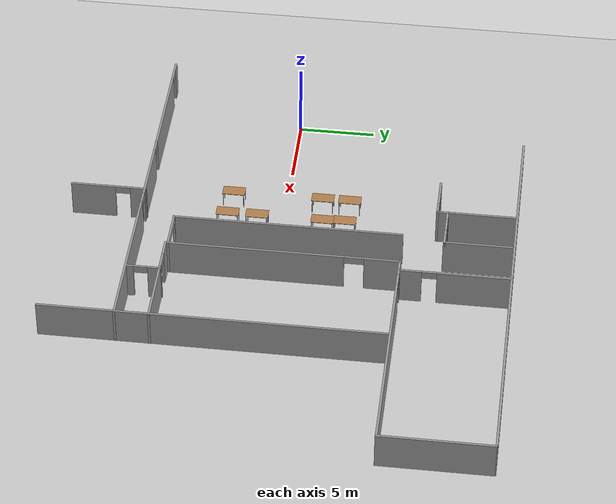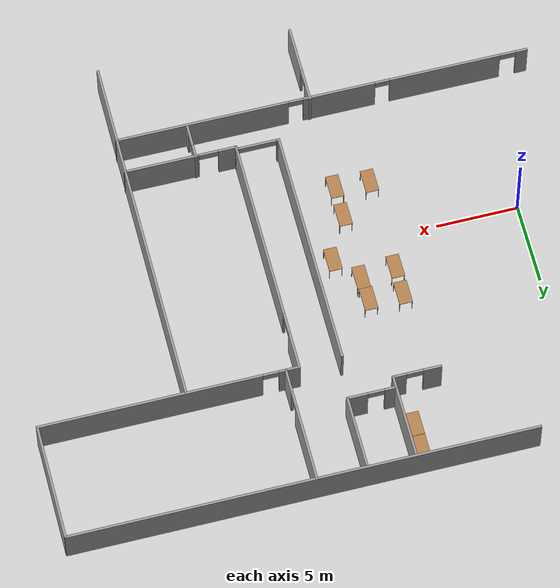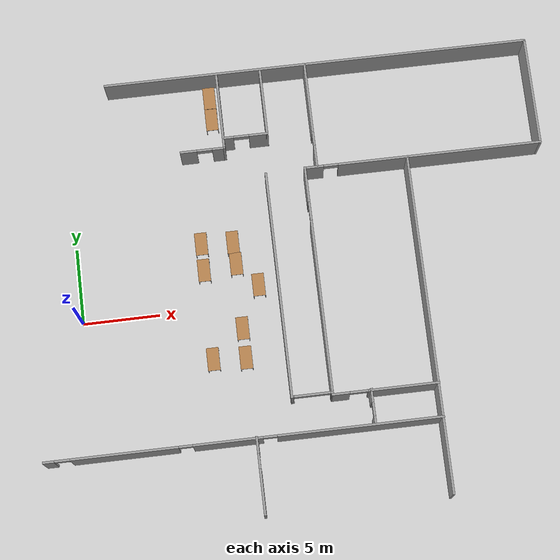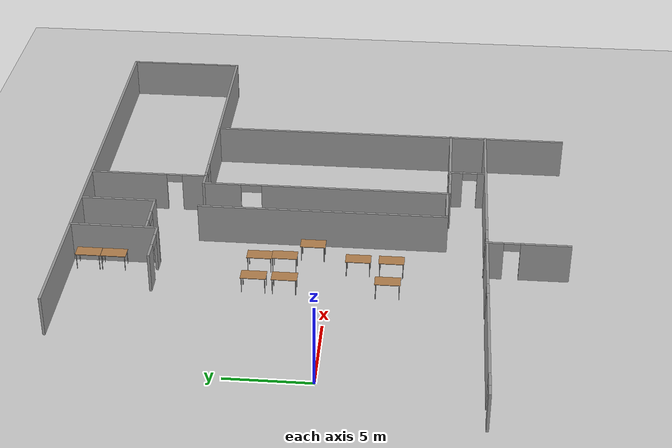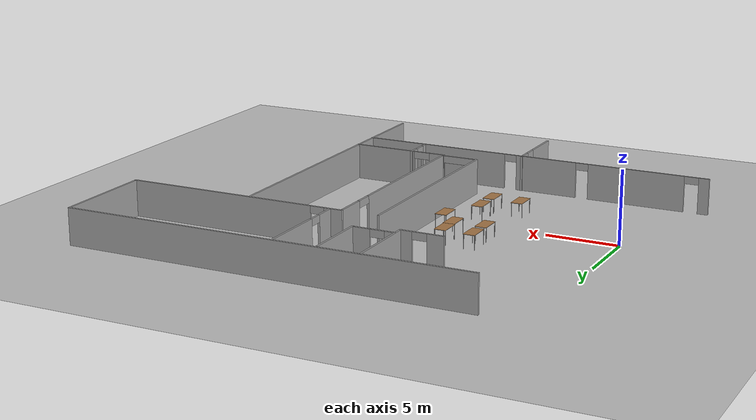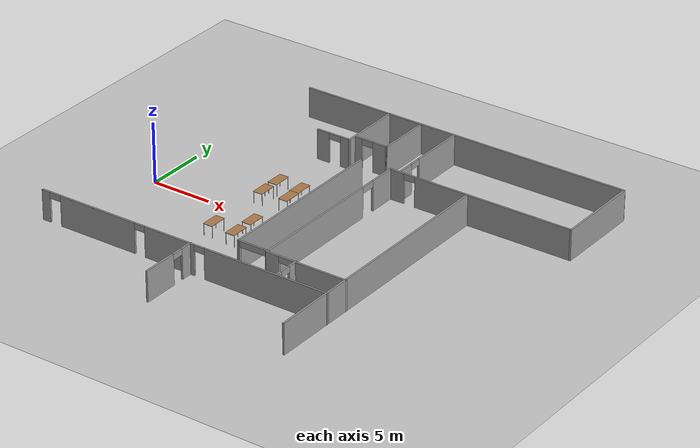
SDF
<sdf version="1.4">
 <world name="default">
  <model name="ground_plane">
   <static>1</static>
   <link name="link">
    <collision name="collision">
     <geometry><plane><normal>0 0 1</normal><size>100 100</size></plane></geometry>
    </collision>
    <visual name="visual">
     <cast_shadows>0</cast_shadows>
     <geometry><plane><normal>0 0 1</normal><size>100 100</size></plane></geometry>
     <material>
      <script><uri>file://media/materials/scripts/gazebo.material</uri><name>Gazebo/Grey</name></script>
     </material>
    </visual>
    <velocity_decay><linear>0</linear><angular>0</angular></velocity_decay>
   </link>
  </model>
  <model name="Shannon">
   <pose>-0.0406 0.68299 0 0 -0 0</pose>
   <link name="Wall_10">
    <collision name="Wall_10_Collision">
     <geometry><box><size>22.25 0.15 2.5</size></box></geometry>
     <pose>0 0 1.25 0 -0 0</pose>
    </collision>
    <visual name="Wall_10_Visual">
     <pose>0 0 1.25 0 -0 0</pose>
     <geometry><box><size>22.25 0.15 2.5</size></box></geometry>
     <material>
      <script><uri>file://media/materials/scripts/gazebo.material</uri><name>Gazebo/Grey</name></script>
      <ambient>1 1 1 1</ambient>
     </material>
    </visual>
    <pose>22.3654 -3.62363 0 0 -0 -1.5708</pose>
    <velocity_decay><linear>0</linear><angular>0</angular></velocity_decay>
   </link>
   <link name="Wall_101">
    <pose>10.5074 -12.1568 0 0 -0 -1.5708</pose>
    <visual name="Wall_101_Visual_0">
     <pose>-1.95368 0 1.25 0 -0 0</pose>
     <geometry><box><size>1.09264 0.15 2.5</size></box></geometry>
     <material>
      <script><uri>file://media/materials/scripts/gazebo.material</uri><name>Gazebo/Grey</name></script>
      <ambient>1 1 1 1</ambient>
     </material>
    </visual>
    <collision name="Wall_101_Collision_0">
     <geometry><box><size>1.09264 0.15 2.5</size></box></geometry>
     <pose>-1.95368 0 1.25 0 -0 0</pose>
    </collision>
    <visual name="Wall_101_Visual_1">
     <pose>1.02674 0 1.25 0 -0 0</pose>
     <geometry><box><size>2.94652 0.15 2.5</size></box></geometry>
     <material>
      <script><uri>file://media/materials/scripts/gazebo.material</uri><name>Gazebo/Grey</name></script>
      <ambient>1 1 1 1</ambient>
     </material>
    </visual>
    <collision name="Wall_101_Collision_1">
     <geometry><box><size>2.94652 0.15 2.5</size></box></geometry>
     <pose>1.02674 0 1.25 0 -0 0</pose>
    </collision>
    <visual name="Wall_101_Visual_2">
     <pose>-0.926938 0 2.25 0 -0 0</pose>
     <geometry><box><size>0.960835 0.15 0.5</size></box></geometry>
     <material>
      <script><uri>file://media/materials/scripts/gazebo.material</uri><name>Gazebo/Grey</name></script>
      <ambient>1 1 1 1</ambient>
     </material>
    </visual>
    <collision name="Wall_101_Collision_2">
     <geometry><box><size>0.960835 0.15 0.5</size></box></geometry>
     <pose>-0.926938 0 2.25 0 -0 0</pose>
    </collision>
    <velocity_decay><linear>0</linear><angular>0</angular></velocity_decay>
   </link>
   <link name="Wall_111">
    <pose>14.3103 -7.43874 0 0 -0 0</pose>
    <visual name="Wall_111_Visual_0">
     <pose>-1.26476 0 1.25 0 -0 0</pose>
     <geometry><box><size>0.220488 0.15 2.5</size></box></geometry>
     <material>
      <script><uri>file://media/materials/scripts/gazebo.material</uri><name>Gazebo/Grey</name></script>
      <ambient>1 1 1 1</ambient>
     </material>
    </visual>
    <collision name="Wall_111_Collision_0">
     <geometry><box><size>0.220488 0.15 2.5</size></box></geometry>
     <pose>-1.26476 0 1.25 0 -0 0</pose>
    </collision>
    <visual name="Wall_111_Visual_1">
     <pose>1.27845 0 1.25 0 -0 0</pose>
     <geometry><box><size>0.193101 0.15 2.5</size></box></geometry>
     <material>
      <script><uri>file://media/materials/scripts/gazebo.material</uri><name>Gazebo/Grey</name></script>
      <ambient>1 1 1 1</ambient>
     </material>
    </visual>
    <collision name="Wall_111_Collision_1">
     <geometry><box><size>0.193101 0.15 2.5</size></box></geometry>
     <pose>1.27845 0 1.25 0 -0 0</pose>
    </collision>
    <visual name="Wall_111_Visual_2">
     <pose>0.013694 0 2.25 0 -0 0</pose>
     <geometry><box><size>2.33641 0.15 0.5</size></box></geometry>
     <material>
      <script><uri>file://media/materials/scripts/gazebo.material</uri><name>Gazebo/Grey</name></script>
      <ambient>1 1 1 1</ambient>
     </material>
    </visual>
    <collision name="Wall_111_Collision_2">
     <geometry><box><size>2.33641 0.15 0.5</size></box></geometry>
     <pose>0.013694 0 2.25 0 -0 0</pose>
    </collision>
    <velocity_decay><linear>0</linear><angular>0</angular></velocity_decay>
   </link>
   <link name="Wall_120">
    <collision name="Wall_120_Collision">
     <geometry><box><size>28.25 0.15 2.5</size></box></geometry>
     <pose>0 0 1.25 0 -0 0</pose>
    </collision>
    <visual name="Wall_120_Visual">
     <pose>0 0 1.25 0 -0 0</pose>
     <geometry><box><size>28.25 0.15 2.5</size></box></geometry>
     <material>
      <script><uri>file://media/materials/scripts/gazebo.material</uri><name>Gazebo/Grey</name></script>
      <ambient>1 1 1 1</ambient>
     </material>
    </visual>
    <pose>17.1298 14.6743 0 0 -0 0</pose>
    <velocity_decay><linear>0</linear><angular>0</angular></velocity_decay>
   </link>
   <link name="Wall_3">
    <collision name="Wall_3_Collision">
     <geometry><box><size>7.25 0.15 2.5</size></box></geometry>
     <pose>0 0 1.25 0 -0 0</pose>
    </collision>
    <visual name="Wall_3_Visual">
     <pose>0 0 1.25 0 -0 0</pose>
     <geometry><box><size>7.25 0.15 2.5</size></box></geometry>
     <material>
      <script><uri>file://media/materials/scripts/gazebo.material</uri><name>Gazebo/Grey</name></script>
      <ambient>1 1 1 1</ambient>
     </material>
    </visual>
    <pose>31.1997 11.0602 0 0 -0 -1.57077</pose>
    <velocity_decay><linear>0</linear><angular>0</angular></velocity_decay>
   </link>
   <link name="Wall_30">
    <pose>9.71772 -9.78221 0 0 -0 0</pose>
    <visual name="Wall_30_Visual_0">
     <pose>-12.3837 0 1.25 0 -0 0</pose>
     <geometry><box><size>0.732546 0.15 2.5</size></box></geometry>
     <material>
      <script><uri>file://media/materials/scripts/gazebo.material</uri><name>Gazebo/Grey</name></script>
      <ambient>1 1 1 1</ambient>
     </material>
    </visual>
    <collision name="Wall_30_Collision_0">
     <geometry><box><size>0.732546 0.15 2.5</size></box></geometry>
     <pose>-12.3837 0 1.25 0 -0 0</pose>
    </collision>
    <visual name="Wall_30_Visual_1">
     <pose>-7.59417 0 1.25 0 -0 0</pose>
     <geometry><box><size>6.86407 0.15 2.5</size></box></geometry>
     <material>
      <script><uri>file://media/materials/scripts/gazebo.material</uri><name>Gazebo/Grey</name></script>
      <ambient>1 1 1 1</ambient>
     </material>
    </visual>
    <collision name="Wall_30_Collision_1">
     <geometry><box><size>6.86407 0.15 2.5</size></box></geometry>
     <pose>-7.59417 0 1.25 0 -0 0</pose>
    </collision>
    <visual name="Wall_30_Visual_2">
     <pose>-1.03326 0 1.25 0 -0 0</pose>
     <geometry><box><size>4.45774 0.15 2.5</size></box></geometry>
     <material>
      <script><uri>file://media/materials/scripts/gazebo.material</uri><name>Gazebo/Grey</name></script>
      <ambient>1 1 1 1</ambient>
     </material>
    </visual>
    <collision name="Wall_30_Collision_2">
     <geometry><box><size>4.45774 0.15 2.5</size></box></geometry>
     <pose>-1.03326 0 1.25 0 -0 0</pose>
    </collision>
    <visual name="Wall_30_Visual_3">
     <pose>7.42281 0 1.25 0 -0 0</pose>
     <geometry><box><size>10.6544 0.15 2.5</size></box></geometry>
     <material>
      <script><uri>file://media/materials/scripts/gazebo.material</uri><name>Gazebo/Grey</name></script>
      <ambient>1 1 1 1</ambient>
     </material>
    </visual>
    <collision name="Wall_30_Collision_3">
     <geometry><box><size>10.6544 0.15 2.5</size></box></geometry>
     <pose>7.42281 0 1.25 0 -0 0</pose>
    </collision>
    <visual name="Wall_30_Visual_4">
     <pose>-11.5218 0 2.25 0 -0 0</pose>
     <geometry><box><size>0.991253 0.15 0.5</size></box></geometry>
     <material>
      <script><uri>file://media/materials/scripts/gazebo.material</uri><name>Gazebo/Grey</name></script>
      <ambient>1 1 1 1</ambient>
     </material>
    </visual>
    <collision name="Wall_30_Collision_4">
     <geometry><box><size>0.991253 0.15 0.5</size></box></geometry>
     <pose>-11.5218 0 2.25 0 -0 0</pose>
    </collision>
    <visual name="Wall_30_Visual_5">
     <pose>-3.71213 0 2.25 0 -0 0</pose>
     <geometry><box><size>0.9 0.15 0.5</size></box></geometry>
     <material>
      <script><uri>file://media/materials/scripts/gazebo.material</uri><name>Gazebo/Grey</name></script>
      <ambient>1 1 1 1</ambient>
     </material>
    </visual>
    <collision name="Wall_30_Collision_5">
     <geometry><box><size>0.9 0.15 0.5</size></box></geometry>
     <pose>-3.71213 0 2.25 0 -0 0</pose>
    </collision>
    <visual name="Wall_30_Visual_6">
     <pose>1.64561 0 2.25 0 -0 0</pose>
     <geometry><box><size>0.9 0.15 0.5</size></box></geometry>
     <material>
      <script><uri>file://media/materials/scripts/gazebo.material</uri><name>Gazebo/Grey</name></script>
      <ambient>1 1 1 1</ambient>
     </material>
    </visual>
    <collision name="Wall_30_Collision_6">
     <geometry><box><size>0.9 0.15 0.5</size></box></geometry>
     <pose>1.64561 0 2.25 0 -0 0</pose>
    </collision>
    <velocity_decay><linear>0</linear><angular>0</angular></velocity_decay>
   </link>
   <link name="Wall_35">
    <collision name="Wall_35_Collision">
     <geometry><box><size>15 0.15 2.5</size></box></geometry>
     <pose>0 0 1.25 0 -0 0</pose>
    </collision>
    <visual name="Wall_35_Visual">
     <pose>0 0 1.25 0 -0 0</pose>
     <geometry><box><size>15 0.15 2.5</size></box></geometry>
     <material>
      <script><uri>file://media/materials/scripts/gazebo.material</uri><name>Gazebo/Grey</name></script>
      <ambient>1 1 1 1</ambient>
     </material>
    </visual>
    <pose>13.0103 -0.013741 0 0 -0 -1.5708</pose>
    <velocity_decay><linear>0</linear><angular>0</angular></velocity_decay>
   </link>
   <link name="Wall_4">
    <pose>23.3998 7.51045 0 0 -0 3.14159</pose>
    <visual name="Wall_4_Visual_0">
     <pose>-1.13283 0 1.25 0 -0 0</pose>
     <geometry><box><size>13.4843 0.15 2.5</size></box></geometry>
     <material>
      <script><uri>file://media/materials/scripts/gazebo.material</uri><name>Gazebo/Grey</name></script>
      <ambient>1 1 1 1</ambient>
     </material>
    </visual>
    <collision name="Wall_4_Collision_0">
     <geometry><box><size>13.4843 0.15 2.5</size></box></geometry>
     <pose>-1.13283 0 1.25 0 -0 0</pose>
    </collision>
    <visual name="Wall_4_Visual_1">
     <pose>7.22409 0 1.25 0 -0 0</pose>
     <geometry><box><size>1.30183 0.15 2.5</size></box></geometry>
     <material>
      <script><uri>file://media/materials/scripts/gazebo.material</uri><name>Gazebo/Grey</name></script>
      <ambient>1 1 1 1</ambient>
     </material>
    </visual>
    <collision name="Wall_4_Collision_1">
     <geometry><box><size>1.30183 0.15 2.5</size></box></geometry>
     <pose>7.22409 0 1.25 0 -0 0</pose>
    </collision>
    <visual name="Wall_4_Visual_2">
     <pose>6.09125 0 2.25 0 -0 0</pose>
     <geometry><box><size>0.96384 0.15 0.5</size></box></geometry>
     <material>
      <script><uri>file://media/materials/scripts/gazebo.material</uri><name>Gazebo/Grey</name></script>
      <ambient>1 1 1 1</ambient>
     </material>
    </visual>
    <collision name="Wall_4_Collision_2">
     <geometry><box><size>0.96384 0.15 0.5</size></box></geometry>
     <pose>6.09125 0 2.25 0 -0 0</pose>
    </collision>
    <velocity_decay><linear>0</linear><angular>0</angular></velocity_decay>
   </link>
   <link name="Wall_7">
    <pose>15.5998 -0.039555 0 0 -0 -1.5708</pose>
    <visual name="Wall_7_Visual_0">
     <pose>-6.43181 0 1.25 0 -0 0</pose>
     <geometry><box><size>2.38638 0.15 2.5</size></box></geometry>
     <material>
      <script><uri>file://media/materials/scripts/gazebo.material</uri><name>Gazebo/Grey</name></script>
      <ambient>1 1 1 1</ambient>
     </material>
    </visual>
    <collision name="Wall_7_Collision_0">
     <geometry><box><size>2.38638 0.15 2.5</size></box></geometry>
     <pose>-6.43181 0 1.25 0 -0 0</pose>
    </collision>
    <visual name="Wall_7_Visual_1">
     <pose>1.82819 0 1.25 0 -0 0</pose>
     <geometry><box><size>11.5936 0.15 2.5</size></box></geometry>
     <material>
      <script><uri>file://media/materials/scripts/gazebo.material</uri><name>Gazebo/Grey</name></script>
      <ambient>1 1 1 1</ambient>
     </material>
    </visual>
    <collision name="Wall_7_Collision_1">
     <geometry><box><size>11.5936 0.15 2.5</size></box></geometry>
     <pose>1.82819 0 1.25 0 -0 0</pose>
    </collision>
    <visual name="Wall_7_Visual_2">
     <pose>-4.60362 0 2.25 0 -0 0</pose>
     <geometry><box><size>1.27 0.15 0.5</size></box></geometry>
     <material>
      <script><uri>file://media/materials/scripts/gazebo.material</uri><name>Gazebo/Grey</name></script>
      <ambient>1 1 1 1</ambient>
     </material>
    </visual>
    <collision name="Wall_7_Collision_2">
     <geometry><box><size>1.27 0.15 0.5</size></box></geometry>
     <pose>-4.60362 0 2.25 0 -0 0</pose>
    </collision>
    <velocity_decay><linear>0</linear><angular>0</angular></velocity_decay>
   </link>
   <link name="Wall_8">
    <pose>18.9967 -7.59133 0 0 -0 -0.000523</pose>
    <visual name="Wall_8_Visual_0">
     <pose>-2.88515 0 1.25 0 -0 0</pose>
     <geometry><box><size>1.17355 0.15 2.5</size></box></geometry>
     <material>
      <script><uri>file://media/materials/scripts/gazebo.material</uri><name>Gazebo/Grey</name></script>
      <ambient>1 1 1 1</ambient>
     </material>
    </visual>
    <collision name="Wall_8_Collision_0">
     <geometry><box><size>1.17355 0.15 2.5</size></box></geometry>
     <pose>-2.88515 0 1.25 0 -0 0</pose>
    </collision>
    <visual name="Wall_8_Visual_1">
     <pose>1.17679 0 1.25 0 -0 0</pose>
     <geometry><box><size>4.59027 0.15 2.5</size></box></geometry>
     <material>
      <script><uri>file://media/materials/scripts/gazebo.material</uri><name>Gazebo/Grey</name></script>
      <ambient>1 1 1 1</ambient>
     </material>
    </visual>
    <collision name="Wall_8_Collision_1">
     <geometry><box><size>4.59027 0.15 2.5</size></box></geometry>
     <pose>1.17679 0 1.25 0 -0 0</pose>
    </collision>
    <visual name="Wall_8_Visual_2">
     <pose>-1.70836 0 2.25 0 -0 0</pose>
     <geometry><box><size>1.18004 0.15 0.5</size></box></geometry>
     <material>
      <script><uri>file://media/materials/scripts/gazebo.material</uri><name>Gazebo/Grey</name></script>
      <ambient>1 1 1 1</ambient>
     </material>
    </visual>
    <collision name="Wall_8_Collision_2">
     <geometry><box><size>1.18004 0.15 0.5</size></box></geometry>
     <pose>-1.70836 0 2.25 0 -0 0</pose>
    </collision>
    <velocity_decay><linear>0</linear><angular>0</angular></velocity_decay>
   </link>
   <link name="Wall_88">
    <pose>9.05855 9.49441 0 0 -0 0</pose>
    <visual name="Wall_88_Visual_0">
     <pose>-0.945109 0 1.25 0 -0 0</pose>
     <geometry><box><size>1.10978 0.15 2.5</size></box></geometry>
     <material>
      <script><uri>file://media/materials/scripts/gazebo.material</uri><name>Gazebo/Grey</name></script>
      <ambient>1 1 1 1</ambient>
     </material>
    </visual>
    <collision name="Wall_88_Collision_0">
     <geometry><box><size>1.10978 0.15 2.5</size></box></geometry>
     <pose>-0.945109 0 1.25 0 -0 0</pose>
    </collision>
    <visual name="Wall_88_Visual_1">
     <pose>1.06489 0 1.25 0 -0 0</pose>
     <geometry><box><size>0.870219 0.15 2.5</size></box></geometry>
     <material>
      <script><uri>file://media/materials/scripts/gazebo.material</uri><name>Gazebo/Grey</name></script>
      <ambient>1 1 1 1</ambient>
     </material>
    </visual>
    <collision name="Wall_88_Collision_1">
     <geometry><box><size>0.870219 0.15 2.5</size></box></geometry>
     <pose>1.06489 0 1.25 0 -0 0</pose>
    </collision>
    <visual name="Wall_88_Visual_2">
     <pose>0.119781 0 2.25 0 -0 0</pose>
     <geometry><box><size>1.02 0.15 0.5</size></box></geometry>
     <material>
      <script><uri>file://media/materials/scripts/gazebo.material</uri><name>Gazebo/Grey</name></script>
      <ambient>1 1 1 1</ambient>
     </material>
    </visual>
    <collision name="Wall_88_Collision_2">
     <geometry><box><size>1.02 0.15 0.5</size></box></geometry>
     <pose>0.119781 0 2.25 0 -0 0</pose>
    </collision>
    <velocity_decay><linear>0</linear><angular>0</angular></velocity_decay>
   </link>
   <link name="Wall_89">
    <collision name="Wall_89_Collision">
     <geometry><box><size>5.25 0.15 2.5</size></box></geometry>
     <pose>0 0 1.25 0 -0 0</pose>
    </collision>
    <visual name="Wall_89_Visual">
     <pose>0 0 1.25 0 -0 0</pose>
     <geometry><box><size>5.25 0.15 2.5</size></box></geometry>
     <material>
      <script><uri>file://media/materials/scripts/gazebo.material</uri><name>Gazebo/Grey</name></script>
      <ambient>1 1 1 1</ambient>
     </material>
    </visual>
    <pose>10.4835 12.0444 0 0 -0 1.5708</pose>
    <velocity_decay><linear>0</linear><angular>0</angular></velocity_decay>
   </link>
   <link name="Wall_91">
    <pose>11.976 10.1638 0 0 -0 0</pose>
    <visual name="Wall_91_Visual_0">
     <pose>-1.14883 0 1.25 0 -0 0</pose>
     <geometry><box><size>0.702335 0.15 2.5</size></box></geometry>
     <material>
      <script><uri>file://media/materials/scripts/gazebo.material</uri><name>Gazebo/Grey</name></script>
      <ambient>1 1 1 1</ambient>
     </material>
    </visual>
    <collision name="Wall_91_Collision_0">
     <geometry><box><size>0.702335 0.15 2.5</size></box></geometry>
     <pose>-1.14883 0 1.25 0 -0 0</pose>
    </collision>
    <visual name="Wall_91_Visual_1">
     <pose>0.856167 0 1.25 0 -0 0</pose>
     <geometry><box><size>1.28767 0.15 2.5</size></box></geometry>
     <material>
      <script><uri>file://media/materials/scripts/gazebo.material</uri><name>Gazebo/Grey</name></script>
      <ambient>1 1 1 1</ambient>
     </material>
    </visual>
    <collision name="Wall_91_Collision_1">
     <geometry><box><size>1.28767 0.15 2.5</size></box></geometry>
     <pose>0.856167 0 1.25 0 -0 0</pose>
    </collision>
    <visual name="Wall_91_Visual_2">
     <pose>-0.292665 0 2.25 0 -0 0</pose>
     <geometry><box><size>1.01 0.15 0.5</size></box></geometry>
     <material>
      <script><uri>file://media/materials/scripts/gazebo.material</uri><name>Gazebo/Grey</name></script>
      <ambient>1 1 1 1</ambient>
     </material>
    </visual>
    <collision name="Wall_91_Collision_2">
     <geometry><box><size>1.01 0.15 0.5</size></box></geometry>
     <pose>-0.292665 0 2.25 0 -0 0</pose>
    </collision>
    <velocity_decay><linear>0</linear><angular>0</angular></velocity_decay>
   </link>
   <link name="Wall_92">
    <collision name="Wall_92_Collision">
     <geometry><box><size>4.5 0.15 2.5</size></box></geometry>
     <pose>0 0 1.25 0 -0 0</pose>
    </collision>
    <visual name="Wall_92_Visual">
     <pose>0 0 1.25 0 -0 0</pose>
     <geometry><box><size>4.5 0.15 2.5</size></box></geometry>
     <material>
      <script><uri>file://media/materials/scripts/gazebo.material</uri><name>Gazebo/Grey</name></script>
      <ambient>1 1 1 1</ambient>
     </material>
    </visual>
    <pose>13.401 12.3388 0 0 -0 1.5708</pose>
    <velocity_decay><linear>0</linear><angular>0</angular></velocity_decay>
   </link>
   <link name="Wall_94">
    <pose>16.403 11.1232 0 0 -0 1.5708</pose>
    <visual name="Wall_94_Visual_0">
     <pose>-2.88705 0 1.25 0 -0 0</pose>
     <geometry><box><size>1.47589 0.15 2.5</size></box></geometry>
     <material>
      <script><uri>file://media/materials/scripts/gazebo.material</uri><name>Gazebo/Grey</name></script>
      <ambient>1 1 1 1</ambient>
     </material>
    </visual>
    <collision name="Wall_94_Collision_0">
     <geometry><box><size>1.47589 0.15 2.5</size></box></geometry>
     <pose>-2.88705 0 1.25 0 -0 0</pose>
    </collision>
    <visual name="Wall_94_Visual_1">
     <pose>1.21795 0 1.25 0 -0 0</pose>
     <geometry><box><size>4.81411 0.15 2.5</size></box></geometry>
     <material>
      <script><uri>file://media/materials/scripts/gazebo.material</uri><name>Gazebo/Grey</name></script>
      <ambient>1 1 1 1</ambient>
     </material>
    </visual>
    <collision name="Wall_94_Collision_1">
     <geometry><box><size>4.81411 0.15 2.5</size></box></geometry>
     <pose>1.21795 0 1.25 0 -0 0</pose>
    </collision>
    <visual name="Wall_94_Visual_2">
     <pose>-1.66911 0 2.25 0 -0 0</pose>
     <geometry><box><size>0.96 0.15 0.5</size></box></geometry>
     <material>
      <script><uri>file://media/materials/scripts/gazebo.material</uri><name>Gazebo/Grey</name></script>
      <ambient>1 1 1 1</ambient>
     </material>
    </visual>
    <collision name="Wall_94_Collision_2">
     <geometry><box><size>0.96 0.15 0.5</size></box></geometry>
     <pose>-1.66911 0 2.25 0 -0 0</pose>
    </collision>
    <velocity_decay><linear>0</linear><angular>0</angular></velocity_decay>
   </link>
   <link name="Wall_96">
    <pose>18.0733 -8.58593 0 0 -0 -1.5708</pose>
    <visual name="Wall_96_Visual_0">
     <pose>-0.6775 0 1.25 0 -0 0</pose>
     <geometry><box><size>0.895 0.15 2.5</size></box></geometry>
     <material>
      <script><uri>file://media/materials/scripts/gazebo.material</uri><name>Gazebo/Grey</name></script>
      <ambient>1 1 1 1</ambient>
     </material>
    </visual>
    <collision name="Wall_96_Collision_0">
     <geometry><box><size>0.895 0.15 2.5</size></box></geometry>
     <pose>-0.6775 0 1.25 0 -0 0</pose>
    </collision>
    <visual name="Wall_96_Visual_1">
     <pose>0.8975 0 1.25 0 -0 0</pose>
     <geometry><box><size>0.455 0.15 2.5</size></box></geometry>
     <material>
      <script><uri>file://media/materials/scripts/gazebo.material</uri><name>Gazebo/Grey</name></script>
      <ambient>1 1 1 1</ambient>
     </material>
    </visual>
    <collision name="Wall_96_Collision_1">
     <geometry><box><size>0.455 0.15 2.5</size></box></geometry>
     <pose>0.8975 0 1.25 0 -0 0</pose>
    </collision>
    <visual name="Wall_96_Visual_2">
     <pose>0.22 0 2.25 0 -0 0</pose>
     <geometry><box><size>0.9 0.15 0.5</size></box></geometry>
     <material>
      <script><uri>file://media/materials/scripts/gazebo.material</uri><name>Gazebo/Grey</name></script>
      <ambient>1 1 1 1</ambient>
     </material>
    </visual>
    <collision name="Wall_96_Collision_2">
     <geometry><box><size>0.9 0.15 0.5</size></box></geometry>
     <pose>0.22 0 2.25 0 -0 0</pose>
    </collision>
    <velocity_decay><linear>0</linear><angular>0</angular></velocity_decay>
   </link>
   <static>1</static>
  </model>
  <model name="table_clone_0">
   <static>1</static>
   <link name="link">
    <collision name="surface">
     <pose>0 0 1 0 -0 0</pose>
     <geometry><box><size>1.5 0.8 0.03</size></box></geometry>
    </collision>
    <visual name="visual1">
     <pose>0 0 1 0 -0 0</pose>
     <geometry><box><size>1.5 0.8 0.03</size></box></geometry>
     <material>
      <script><uri>file://media/materials/scripts/gazebo.material</uri><name>Gazebo/Wood</name></script>
     </material>
    </visual>
    <collision name="front_left_leg">
     <pose>0.68 0.38 0.5 0 -0 0</pose>
     <geometry><cylinder><radius>0.02</radius><length>1</length></cylinder></geometry>
    </collision>
    <visual name="front_left_leg">
     <pose>0.68 0.38 0.5 0 -0 0</pose>
     <geometry><cylinder><radius>0.02</radius><length>1</length></cylinder></geometry>
     <material>
      <script><uri>file://media/materials/scripts/gazebo.material</uri><name>Gazebo/Grey</name></script>
     </material>
    </visual>
    <collision name="front_right_leg">
     <pose>0.68 -0.38 0.5 0 -0 0</pose>
     <geometry><cylinder><radius>0.02</radius><length>1</length></cylinder></geometry>
    </collision>
    <visual name="front_right_leg">
     <pose>0.68 -0.38 0.5 0 -0 0</pose>
     <geometry><cylinder><radius>0.02</radius><length>1</length></cylinder></geometry>
     <material>
      <script><uri>file://media/materials/scripts/gazebo.material</uri><name>Gazebo/Grey</name></script>
     </material>
    </visual>
    <collision name="back_right_leg">
     <pose>-0.68 -0.38 0.5 0 -0 0</pose>
     <geometry><cylinder><radius>0.02</radius><length>1</length></cylinder></geometry>
    </collision>
    <visual name="back_right_leg">
     <pose>-0.68 -0.38 0.5 0 -0 0</pose>
     <geometry><cylinder><radius>0.02</radius><length>1</length></cylinder></geometry>
     <material>
      <script><uri>file://media/materials/scripts/gazebo.material</uri><name>Gazebo/Grey</name></script>
     </material>
    </visual>
    <collision name="back_left_leg">
     <pose>-0.68 0.38 0.5 0 -0 0</pose>
     <geometry><cylinder><radius>0.02</radius><length>1</length></cylinder></geometry>
    </collision>
    <visual name="back_left_leg">
     <pose>-0.68 0.38 0.5 0 -0 0</pose>
     <geometry><cylinder><radius>0.02</radius><length>1</length></cylinder></geometry>
     <material>
      <script><uri>file://media/materials/scripts/gazebo.material</uri><name>Gazebo/Grey</name></script>
     </material>
    </visual>
    <velocity_decay><linear>0</linear><angular>0</angular></velocity_decay>
   </link>
   <pose>9.79789 14.228 0 0 -0 1.57</pose>
  </model>
  <model name="table_clone_1">
   <static>1</static>
   <link name="link">
    <collision name="surface">
     <pose>0 0 1 0 -0 0</pose>
     <geometry><box><size>1.5 0.8 0.03</size></box></geometry>
    </collision>
    <visual name="visual1">
     <pose>0 0 1 0 -0 0</pose>
     <geometry><box><size>1.5 0.8 0.03</size></box></geometry>
     <material>
      <script><uri>file://media/materials/scripts/gazebo.material</uri><name>Gazebo/Wood</name></script>
     </material>
    </visual>
    <collision name="front_left_leg">
     <pose>0.68 0.38 0.5 0 -0 0</pose>
     <geometry><cylinder><radius>0.02</radius><length>1</length></cylinder></geometry>
    </collision>
    <visual name="front_left_leg">
     <pose>0.68 0.38 0.5 0 -0 0</pose>
     <geometry><cylinder><radius>0.02</radius><length>1</length></cylinder></geometry>
     <material>
      <script><uri>file://media/materials/scripts/gazebo.material</uri><name>Gazebo/Grey</name></script>
     </material>
    </visual>
    <collision name="front_right_leg">
     <pose>0.68 -0.38 0.5 0 -0 0</pose>
     <geometry><cylinder><radius>0.02</radius><length>1</length></cylinder></geometry>
    </collision>
    <visual name="front_right_leg">
     <pose>0.68 -0.38 0.5 0 -0 0</pose>
     <geometry><cylinder><radius>0.02</radius><length>1</length></cylinder></geometry>
     <material>
      <script><uri>file://media/materials/scripts/gazebo.material</uri><name>Gazebo/Grey</name></script>
     </material>
    </visual>
    <collision name="back_right_leg">
     <pose>-0.68 -0.38 0.5 0 -0 0</pose>
     <geometry><cylinder><radius>0.02</radius><length>1</length></cylinder></geometry>
    </collision>
    <visual name="back_right_leg">
     <pose>-0.68 -0.38 0.5 0 -0 0</pose>
     <geometry><cylinder><radius>0.02</radius><length>1</length></cylinder></geometry>
     <material>
      <script><uri>file://media/materials/scripts/gazebo.material</uri><name>Gazebo/Grey</name></script>
     </material>
    </visual>
    <collision name="back_left_leg">
     <pose>-0.68 0.38 0.5 0 -0 0</pose>
     <geometry><cylinder><radius>0.02</radius><length>1</length></cylinder></geometry>
    </collision>
    <visual name="back_left_leg">
     <pose>-0.68 0.38 0.5 0 -0 0</pose>
     <geometry><cylinder><radius>0.02</radius><length>1</length></cylinder></geometry>
     <material>
      <script><uri>file://media/materials/scripts/gazebo.material</uri><name>Gazebo/Grey</name></script>
     </material>
    </visual>
    <velocity_decay><linear>0</linear><angular>0</angular></velocity_decay>
   </link>
   <pose>9.79411 12.7126 0 0 -0 1.57</pose>
  </model>
  <model name="table_clone_clone_2_clone_clone_0">
   <static>1</static>
   <link name="link">
    <collision name="surface">
     <pose>0 0 1 0 -0 0</pose>
     <geometry><box><size>1.5 0.8 0.03</size></box></geometry>
    </collision>
    <visual name="visual1">
     <pose>0 0 1 0 -0 0</pose>
     <geometry><box><size>1.5 0.8 0.03</size></box></geometry>
     <material>
      <script><uri>file://media/materials/scripts/gazebo.material</uri><name>Gazebo/Wood</name></script>
     </material>
    </visual>
    <collision name="front_left_leg">
     <pose>0.68 0.38 0.5 0 -0 0</pose>
     <geometry><cylinder><radius>0.02</radius><length>1</length></cylinder></geometry>
    </collision>
    <visual name="front_left_leg">
     <pose>0.68 0.38 0.5 0 -0 0</pose>
     <geometry><cylinder><radius>0.02</radius><length>1</length></cylinder></geometry>
     <material>
      <script><uri>file://media/materials/scripts/gazebo.material</uri><name>Gazebo/Grey</name></script>
     </material>
    </visual>
    <collision name="front_right_leg">
     <pose>0.68 -0.38 0.5 0 -0 0</pose>
     <geometry><cylinder><radius>0.02</radius><length>1</length></cylinder></geometry>
    </collision>
    <visual name="front_right_leg">
     <pose>0.68 -0.38 0.5 0 -0 0</pose>
     <geometry><cylinder><radius>0.02</radius><length>1</length></cylinder></geometry>
     <material>
      <script><uri>file://media/materials/scripts/gazebo.material</uri><name>Gazebo/Grey</name></script>
     </material>
    </visual>
    <collision name="back_right_leg">
     <pose>-0.68 -0.38 0.5 0 -0 0</pose>
     <geometry><cylinder><radius>0.02</radius><length>1</length></cylinder></geometry>
    </collision>
    <visual name="back_right_leg">
     <pose>-0.68 -0.38 0.5 0 -0 0</pose>
     <geometry><cylinder><radius>0.02</radius><length>1</length></cylinder></geometry>
     <material>
      <script><uri>file://media/materials/scripts/gazebo.material</uri><name>Gazebo/Grey</name></script>
     </material>
    </visual>
    <collision name="back_left_leg">
     <pose>-0.68 0.38 0.5 0 -0 0</pose>
     <geometry><cylinder><radius>0.02</radius><length>1</length></cylinder></geometry>
    </collision>
    <visual name="back_left_leg">
     <pose>-0.68 0.38 0.5 0 -0 0</pose>
     <geometry><cylinder><radius>0.02</radius><length>1</length></cylinder></geometry>
     <material>
      <script><uri>file://media/materials/scripts/gazebo.material</uri><name>Gazebo/Grey</name></script>
     </material>
    </visual>
    <velocity_decay><linear>0</linear><angular>0</angular></velocity_decay>
   </link>
   <pose>11.6775 1.08922 0 0 -0 1.57</pose>
  </model>
  <model name="table_clone_clone_21_clone_2_clone_5_clone_13">
   <static>1</static>
   <link name="link">
    <collision name="surface">
     <pose>0 0 1 0 -0 0</pose>
     <geometry><box><size>1.5 0.8 0.03</size></box></geometry>
    </collision>
    <visual name="visual1">
     <pose>0 0 1 0 -0 0</pose>
     <geometry><box><size>1.5 0.8 0.03</size></box></geometry>
     <material>
      <script><uri>file://media/materials/scripts/gazebo.material</uri><name>Gazebo/Wood</name></script>
     </material>
    </visual>
    <collision name="front_left_leg">
     <pose>0.68 0.38 0.5 0 -0 0</pose>
     <geometry><cylinder><radius>0.02</radius><length>1</length></cylinder></geometry>
    </collision>
    <visual name="front_left_leg">
     <pose>0.68 0.38 0.5 0 -0 0</pose>
     <geometry><cylinder><radius>0.02</radius><length>1</length></cylinder></geometry>
     <material>
      <script><uri>file://media/materials/scripts/gazebo.material</uri><name>Gazebo/Grey</name></script>
     </material>
    </visual>
    <collision name="front_right_leg">
     <pose>0.68 -0.38 0.5 0 -0 0</pose>
     <geometry><cylinder><radius>0.02</radius><length>1</length></cylinder></geometry>
    </collision>
    <visual name="front_right_leg">
     <pose>0.68 -0.38 0.5 0 -0 0</pose>
     <geometry><cylinder><radius>0.02</radius><length>1</length></cylinder></geometry>
     <material>
      <script><uri>file://media/materials/scripts/gazebo.material</uri><name>Gazebo/Grey</name></script>
     </material>
    </visual>
    <collision name="back_right_leg">
     <pose>-0.68 -0.38 0.5 0 -0 0</pose>
     <geometry><cylinder><radius>0.02</radius><length>1</length></cylinder></geometry>
    </collision>
    <visual name="back_right_leg">
     <pose>-0.68 -0.38 0.5 0 -0 0</pose>
     <geometry><cylinder><radius>0.02</radius><length>1</length></cylinder></geometry>
     <material>
      <script><uri>file://media/materials/scripts/gazebo.material</uri><name>Gazebo/Grey</name></script>
     </material>
    </visual>
    <collision name="back_left_leg">
     <pose>-0.68 0.38 0.5 0 -0 0</pose>
     <geometry><cylinder><radius>0.02</radius><length>1</length></cylinder></geometry>
    </collision>
    <visual name="back_left_leg">
     <pose>-0.68 0.38 0.5 0 -0 0</pose>
     <geometry><cylinder><radius>0.02</radius><length>1</length></cylinder></geometry>
     <material>
      <script><uri>file://media/materials/scripts/gazebo.material</uri><name>Gazebo/Grey</name></script>
     </material>
    </visual>
    <velocity_decay><linear>0</linear><angular>0</angular></velocity_decay>
   </link>
   <pose>8.23192 4.24692 0 0 -0 1.57</pose>
  </model>
  <model name="table_clone_clone_21_clone_2_clone_5_clone_14">
   <static>1</static>
   <link name="link">
    <collision name="surface">
     <pose>0 0 1 0 -0 0</pose>
     <geometry><box><size>1.5 0.8 0.03</size></box></geometry>
    </collision>
    <visual name="visual1">
     <pose>0 0 1 0 -0 0</pose>
     <geometry><box><size>1.5 0.8 0.03</size></box></geometry>
     <material>
      <script><uri>file://media/materials/scripts/gazebo.material</uri><name>Gazebo/Wood</name></script>
     </material>
    </visual>
    <collision name="front_left_leg">
     <pose>0.68 0.38 0.5 0 -0 0</pose>
     <geometry><cylinder><radius>0.02</radius><length>1</length></cylinder></geometry>
    </collision>
    <visual name="front_left_leg">
     <pose>0.68 0.38 0.5 0 -0 0</pose>
     <geometry><cylinder><radius>0.02</radius><length>1</length></cylinder></geometry>
     <material>
      <script><uri>file://media/materials/scripts/gazebo.material</uri><name>Gazebo/Grey</name></script>
     </material>
    </visual>
    <collision name="front_right_leg">
     <pose>0.68 -0.38 0.5 0 -0 0</pose>
     <geometry><cylinder><radius>0.02</radius><length>1</length></cylinder></geometry>
    </collision>
    <visual name="front_right_leg">
     <pose>0.68 -0.38 0.5 0 -0 0</pose>
     <geometry><cylinder><radius>0.02</radius><length>1</length></cylinder></geometry>
     <material>
      <script><uri>file://media/materials/scripts/gazebo.material</uri><name>Gazebo/Grey</name></script>
     </material>
    </visual>
    <collision name="back_right_leg">
     <pose>-0.68 -0.38 0.5 0 -0 0</pose>
     <geometry><cylinder><radius>0.02</radius><length>1</length></cylinder></geometry>
    </collision>
    <visual name="back_right_leg">
     <pose>-0.68 -0.38 0.5 0 -0 0</pose>
     <geometry><cylinder><radius>0.02</radius><length>1</length></cylinder></geometry>
     <material>
      <script><uri>file://media/materials/scripts/gazebo.material</uri><name>Gazebo/Grey</name></script>
     </material>
    </visual>
    <collision name="back_left_leg">
     <pose>-0.68 0.38 0.5 0 -0 0</pose>
     <geometry><cylinder><radius>0.02</radius><length>1</length></cylinder></geometry>
    </collision>
    <visual name="back_left_leg">
     <pose>-0.68 0.38 0.5 0 -0 0</pose>
     <geometry><cylinder><radius>0.02</radius><length>1</length></cylinder></geometry>
     <material>
      <script><uri>file://media/materials/scripts/gazebo.material</uri><name>Gazebo/Grey</name></script>
     </material>
    </visual>
    <velocity_decay><linear>0</linear><angular>0</angular></velocity_decay>
   </link>
   <pose>8.22659 2.45411 0 0 -0 1.57</pose>
  </model>
  <model name="table_clone_clone_21_clone_2_clone_5_clone_16">
   <static>1</static>
   <link name="link">
    <collision name="surface">
     <pose>0 0 1 0 -0 0</pose>
     <geometry><box><size>1.5 0.8 0.03</size></box></geometry>
    </collision>
    <visual name="visual1">
     <pose>0 0 1 0 -0 0</pose>
     <geometry><box><size>1.5 0.8 0.03</size></box></geometry>
     <material>
      <script><uri>file://media/materials/scripts/gazebo.material</uri><name>Gazebo/Wood</name></script>
     </material>
    </visual>
    <collision name="front_left_leg">
     <pose>0.68 0.38 0.5 0 -0 0</pose>
     <geometry><cylinder><radius>0.02</radius><length>1</length></cylinder></geometry>
    </collision>
    <visual name="front_left_leg">
     <pose>0.68 0.38 0.5 0 -0 0</pose>
     <geometry><cylinder><radius>0.02</radius><length>1</length></cylinder></geometry>
     <material>
      <script><uri>file://media/materials/scripts/gazebo.material</uri><name>Gazebo/Grey</name></script>
     </material>
    </visual>
    <collision name="front_right_leg">
     <pose>0.68 -0.38 0.5 0 -0 0</pose>
     <geometry><cylinder><radius>0.02</radius><length>1</length></cylinder></geometry>
    </collision>
    <visual name="front_right_leg">
     <pose>0.68 -0.38 0.5 0 -0 0</pose>
     <geometry><cylinder><radius>0.02</radius><length>1</length></cylinder></geometry>
     <material>
      <script><uri>file://media/materials/scripts/gazebo.material</uri><name>Gazebo/Grey</name></script>
     </material>
    </visual>
    <collision name="back_right_leg">
     <pose>-0.68 -0.38 0.5 0 -0 0</pose>
     <geometry><cylinder><radius>0.02</radius><length>1</length></cylinder></geometry>
    </collision>
    <visual name="back_right_leg">
     <pose>-0.68 -0.38 0.5 0 -0 0</pose>
     <geometry><cylinder><radius>0.02</radius><length>1</length></cylinder></geometry>
     <material>
      <script><uri>file://media/materials/scripts/gazebo.material</uri><name>Gazebo/Grey</name></script>
     </material>
    </visual>
    <collision name="back_left_leg">
     <pose>-0.68 0.38 0.5 0 -0 0</pose>
     <geometry><cylinder><radius>0.02</radius><length>1</length></cylinder></geometry>
    </collision>
    <visual name="back_left_leg">
     <pose>-0.68 0.38 0.5 0 -0 0</pose>
     <geometry><cylinder><radius>0.02</radius><length>1</length></cylinder></geometry>
     <material>
      <script><uri>file://media/materials/scripts/gazebo.material</uri><name>Gazebo/Grey</name></script>
     </material>
    </visual>
    <velocity_decay><linear>0</linear><angular>0</angular></velocity_decay>
   </link>
   <pose>8.22523 -3.49181 0 0 -0 1.57</pose>
  </model>
  <model name="table_clone_clone_21_clone_2_clone_5_clone_19">
   <static>1</static>
   <link name="link">
    <collision name="surface">
     <pose>0 0 1 0 -0 0</pose>
     <geometry><box><size>1.5 0.8 0.03</size></box></geometry>
    </collision>
    <visual name="visual1">
     <pose>0 0 1 0 -0 0</pose>
     <geometry><box><size>1.5 0.8 0.03</size></box></geometry>
     <material>
      <script><uri>file://media/materials/scripts/gazebo.material</uri><name>Gazebo/Wood</name></script>
     </material>
    </visual>
    <collision name="front_left_leg">
     <pose>0.68 0.38 0.5 0 -0 0</pose>
     <geometry><cylinder><radius>0.02</radius><length>1</length></cylinder></geometry>
    </collision>
    <visual name="front_left_leg">
     <pose>0.68 0.38 0.5 0 -0 0</pose>
     <geometry><cylinder><radius>0.02</radius><length>1</length></cylinder></geometry>
     <material>
      <script><uri>file://media/materials/scripts/gazebo.material</uri><name>Gazebo/Grey</name></script>
     </material>
    </visual>
    <collision name="front_right_leg">
     <pose>0.68 -0.38 0.5 0 -0 0</pose>
     <geometry><cylinder><radius>0.02</radius><length>1</length></cylinder></geometry>
    </collision>
    <visual name="front_right_leg">
     <pose>0.68 -0.38 0.5 0 -0 0</pose>
     <geometry><cylinder><radius>0.02</radius><length>1</length></cylinder></geometry>
     <material>
      <script><uri>file://media/materials/scripts/gazebo.material</uri><name>Gazebo/Grey</name></script>
     </material>
    </visual>
    <collision name="back_right_leg">
     <pose>-0.68 -0.38 0.5 0 -0 0</pose>
     <geometry><cylinder><radius>0.02</radius><length>1</length></cylinder></geometry>
    </collision>
    <visual name="back_right_leg">
     <pose>-0.68 -0.38 0.5 0 -0 0</pose>
     <geometry><cylinder><radius>0.02</radius><length>1</length></cylinder></geometry>
     <material>
      <script><uri>file://media/materials/scripts/gazebo.material</uri><name>Gazebo/Grey</name></script>
     </material>
    </visual>
    <collision name="back_left_leg">
     <pose>-0.68 0.38 0.5 0 -0 0</pose>
     <geometry><cylinder><radius>0.02</radius><length>1</length></cylinder></geometry>
    </collision>
    <visual name="back_left_leg">
     <pose>-0.68 0.38 0.5 0 -0 0</pose>
     <geometry><cylinder><radius>0.02</radius><length>1</length></cylinder></geometry>
     <material>
      <script><uri>file://media/materials/scripts/gazebo.material</uri><name>Gazebo/Grey</name></script>
     </material>
    </visual>
    <velocity_decay><linear>0</linear><angular>0</angular></velocity_decay>
   </link>
   <pose>10.331 -3.62977 0 0 -0 1.57</pose>
  </model>
  <model name="table_clone_clone_21_clone_2_clone_5_clone_20">
   <static>1</static>
   <link name="link">
    <collision name="surface">
     <pose>0 0 1 0 -0 0</pose>
     <geometry><box><size>1.5 0.8 0.03</size></box></geometry>
    </collision>
    <visual name="visual1">
     <pose>0 0 1 0 -0 0</pose>
     <geometry><box><size>1.5 0.8 0.03</size></box></geometry>
     <material>
      <script><uri>file://media/materials/scripts/gazebo.material</uri><name>Gazebo/Wood</name></script>
     </material>
    </visual>
    <collision name="front_left_leg">
     <pose>0.68 0.38 0.5 0 -0 0</pose>
     <geometry><cylinder><radius>0.02</radius><length>1</length></cylinder></geometry>
    </collision>
    <visual name="front_left_leg">
     <pose>0.68 0.38 0.5 0 -0 0</pose>
     <geometry><cylinder><radius>0.02</radius><length>1</length></cylinder></geometry>
     <material>
      <script><uri>file://media/materials/scripts/gazebo.material</uri><name>Gazebo/Grey</name></script>
     </material>
    </visual>
    <collision name="front_right_leg">
     <pose>0.68 -0.38 0.5 0 -0 0</pose>
     <geometry><cylinder><radius>0.02</radius><length>1</length></cylinder></geometry>
    </collision>
    <visual name="front_right_leg">
     <pose>0.68 -0.38 0.5 0 -0 0</pose>
     <geometry><cylinder><radius>0.02</radius><length>1</length></cylinder></geometry>
     <material>
      <script><uri>file://media/materials/scripts/gazebo.material</uri><name>Gazebo/Grey</name></script>
     </material>
    </visual>
    <collision name="back_right_leg">
     <pose>-0.68 -0.38 0.5 0 -0 0</pose>
     <geometry><cylinder><radius>0.02</radius><length>1</length></cylinder></geometry>
    </collision>
    <visual name="back_right_leg">
     <pose>-0.68 -0.38 0.5 0 -0 0</pose>
     <geometry><cylinder><radius>0.02</radius><length>1</length></cylinder></geometry>
     <material>
      <script><uri>file://media/materials/scripts/gazebo.material</uri><name>Gazebo/Grey</name></script>
     </material>
    </visual>
    <collision name="back_left_leg">
     <pose>-0.68 0.38 0.5 0 -0 0</pose>
     <geometry><cylinder><radius>0.02</radius><length>1</length></cylinder></geometry>
    </collision>
    <visual name="back_left_leg">
     <pose>-0.68 0.38 0.5 0 -0 0</pose>
     <geometry><cylinder><radius>0.02</radius><length>1</length></cylinder></geometry>
     <material>
      <script><uri>file://media/materials/scripts/gazebo.material</uri><name>Gazebo/Grey</name></script>
     </material>
    </visual>
    <velocity_decay><linear>0</linear><angular>0</angular></velocity_decay>
   </link>
   <pose>10.3292 -1.67951 0 0 -0 1.57</pose>
  </model>
  <model name="table_clone_clone_21_clone_2_clone_5_clone_21">
   <static>1</static>
   <link name="link">
    <collision name="surface">
     <pose>0 0 1 0 -0 0</pose>
     <geometry><box><size>1.5 0.8 0.03</size></box></geometry>
    </collision>
    <visual name="visual1">
     <pose>0 0 1 0 -0 0</pose>
     <geometry><box><size>1.5 0.8 0.03</size></box></geometry>
     <material>
      <script><uri>file://media/materials/scripts/gazebo.material</uri><name>Gazebo/Wood</name></script>
     </material>
    </visual>
    <collision name="front_left_leg">
     <pose>0.68 0.38 0.5 0 -0 0</pose>
     <geometry><cylinder><radius>0.02</radius><length>1</length></cylinder></geometry>
    </collision>
    <visual name="front_left_leg">
     <pose>0.68 0.38 0.5 0 -0 0</pose>
     <geometry><cylinder><radius>0.02</radius><length>1</length></cylinder></geometry>
     <material>
      <script><uri>file://media/materials/scripts/gazebo.material</uri><name>Gazebo/Grey</name></script>
     </material>
    </visual>
    <collision name="front_right_leg">
     <pose>0.68 -0.38 0.5 0 -0 0</pose>
     <geometry><cylinder><radius>0.02</radius><length>1</length></cylinder></geometry>
    </collision>
    <visual name="front_right_leg">
     <pose>0.68 -0.38 0.5 0 -0 0</pose>
     <geometry><cylinder><radius>0.02</radius><length>1</length></cylinder></geometry>
     <material>
      <script><uri>file://media/materials/scripts/gazebo.material</uri><name>Gazebo/Grey</name></script>
     </material>
    </visual>
    <collision name="back_right_leg">
     <pose>-0.68 -0.38 0.5 0 -0 0</pose>
     <geometry><cylinder><radius>0.02</radius><length>1</length></cylinder></geometry>
    </collision>
    <visual name="back_right_leg">
     <pose>-0.68 -0.38 0.5 0 -0 0</pose>
     <geometry><cylinder><radius>0.02</radius><length>1</length></cylinder></geometry>
     <material>
      <script><uri>file://media/materials/scripts/gazebo.material</uri><name>Gazebo/Grey</name></script>
     </material>
    </visual>
    <collision name="back_left_leg">
     <pose>-0.68 0.38 0.5 0 -0 0</pose>
     <geometry><cylinder><radius>0.02</radius><length>1</length></cylinder></geometry>
    </collision>
    <visual name="back_left_leg">
     <pose>-0.68 0.38 0.5 0 -0 0</pose>
     <geometry><cylinder><radius>0.02</radius><length>1</length></cylinder></geometry>
     <material>
      <script><uri>file://media/materials/scripts/gazebo.material</uri><name>Gazebo/Grey</name></script>
     </material>
    </visual>
    <velocity_decay><linear>0</linear><angular>0</angular></velocity_decay>
   </link>
   <pose>10.3681 2.65404 0 0 -0 1.57</pose>
  </model>
  <model name="table_clone_clone_21_clone_2_clone_5_clone_22">
   <static>1</static>
   <link name="link">
    <collision name="surface">
     <pose>0 0 1 0 -0 0</pose>
     <geometry><box><size>1.5 0.8 0.03</size></box></geometry>
    </collision>
    <visual name="visual1">
     <pose>0 0 1 0 -0 0</pose>
     <geometry><box><size>1.5 0.8 0.03</size></box></geometry>
     <material>
      <script><uri>file://media/materials/scripts/gazebo.material</uri><name>Gazebo/Wood</name></script>
     </material>
    </visual>
    <collision name="front_left_leg">
     <pose>0.68 0.38 0.5 0 -0 0</pose>
     <geometry><cylinder><radius>0.02</radius><length>1</length></cylinder></geometry>
    </collision>
    <visual name="front_left_leg">
     <pose>0.68 0.38 0.5 0 -0 0</pose>
     <geometry><cylinder><radius>0.02</radius><length>1</length></cylinder></geometry>
     <material>
      <script><uri>file://media/materials/scripts/gazebo.material</uri><name>Gazebo/Grey</name></script>
     </material>
    </visual>
    <collision name="front_right_leg">
     <pose>0.68 -0.38 0.5 0 -0 0</pose>
     <geometry><cylinder><radius>0.02</radius><length>1</length></cylinder></geometry>
    </collision>
    <visual name="front_right_leg">
     <pose>0.68 -0.38 0.5 0 -0 0</pose>
     <geometry><cylinder><radius>0.02</radius><length>1</length></cylinder></geometry>
     <material>
      <script><uri>file://media/materials/scripts/gazebo.material</uri><name>Gazebo/Grey</name></script>
     </material>
    </visual>
    <collision name="back_right_leg">
     <pose>-0.68 -0.38 0.5 0 -0 0</pose>
     <geometry><cylinder><radius>0.02</radius><length>1</length></cylinder></geometry>
    </collision>
    <visual name="back_right_leg">
     <pose>-0.68 -0.38 0.5 0 -0 0</pose>
     <geometry><cylinder><radius>0.02</radius><length>1</length></cylinder></geometry>
     <material>
      <script><uri>file://media/materials/scripts/gazebo.material</uri><name>Gazebo/Grey</name></script>
     </material>
    </visual>
    <collision name="back_left_leg">
     <pose>-0.68 0.38 0.5 0 -0 0</pose>
     <geometry><cylinder><radius>0.02</radius><length>1</length></cylinder></geometry>
    </collision>
    <visual name="back_left_leg">
     <pose>-0.68 0.38 0.5 0 -0 0</pose>
     <geometry><cylinder><radius>0.02</radius><length>1</length></cylinder></geometry>
     <material>
      <script><uri>file://media/materials/scripts/gazebo.material</uri><name>Gazebo/Grey</name></script>
     </material>
    </visual>
    <velocity_decay><linear>0</linear><angular>0</angular></velocity_decay>
   </link>
   <pose>10.3029 4.12565 0 0 -0 1.57</pose>
  </model>
 </world>
</sdf>
